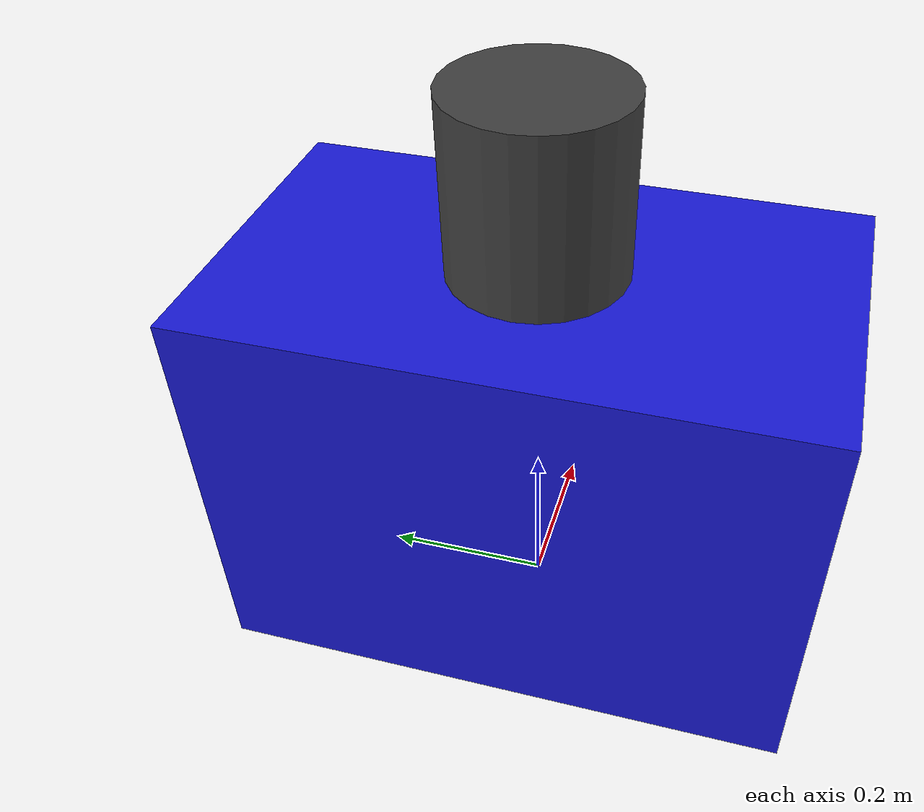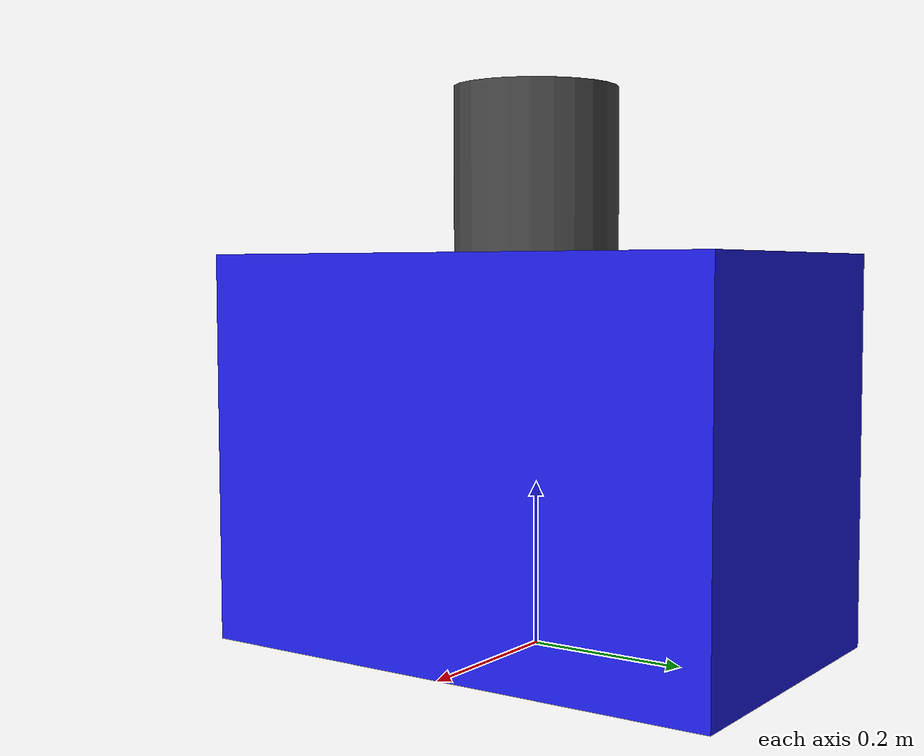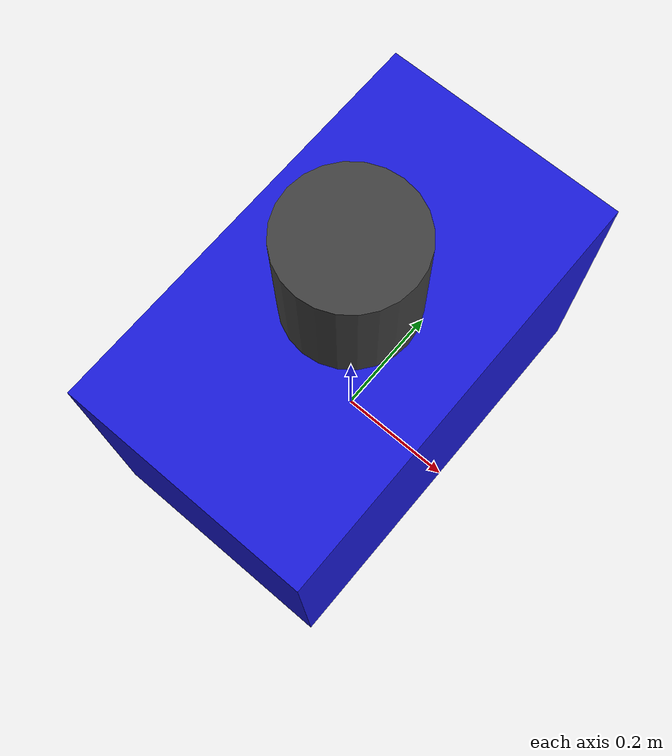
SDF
<?xml version="1.0" ?>
<sdf version="1.6">
  <model name="lander">
    <pose>0 0 0 0 0 0</pose>

    <!-- Radio box, high mass and small inertia so it doesn't fall over easily -->
    <link name="cuboid_link">
      <pose>0 0 0.24 0 0 0</pose> <!-- Position the cuboid on the ground -->
      <visual name="visual">
        <geometry>
          <box>
            <size>0.4 0.68 0.48</size>
          </box>
        </geometry>
        <material>
          <ambient>0.1 0.1 0.85 1</ambient>
          <diffuse>0.1 0.1 0.85 1</diffuse>
        </material>
      </visual>
      <collision name="collision">
        <geometry>
          <box>
            <size>0.4 0.68 0.48</size>
          </box>
        </geometry>
      </collision>
      <inertial>
        <mass>50</mass>
        <inertia>
          <ixx>0.00083</ixx>
          <ixy>0</ixy>
          <ixz>0</ixz>
          <iyy>0.00083</iyy>
          <iyz>0</iyz>
          <izz>0.00083</izz>
        </inertia>
      </inertial>
    </link>

    <!-- Rod link, small mass on purpose -->
    <link name="rod_link">
      <pose>0 0 0.58 0 0 0</pose> <!-- Position the rod on top of the cuboid -->
      <visual name="rod_visual">
        <geometry>
          <cylinder>
            <radius>0.1</radius>
            <length>0.2</length>
          </cylinder>
        </geometry>
        <material>
          <ambient>0.25 0.25 0.25 1</ambient>
          <diffuse>0.25 0.25 0.25 1</diffuse>
        </material>
      </visual>
      <collision name="rod_collision">
        <geometry>
          <cylinder>
            <radius>0.1</radius>
            <length>0.2</length>
          </cylinder>
        </geometry>
      </collision>
      <inertial>
        <mass>0.01</mass>
        <inertia>
          <ixx>0.00083</ixx>
          <ixy>0</ixy>
          <ixz>0</ixz>
          <iyy>0.00083</iyy>
          <iyz>0</iyz>
          <izz>0.00083</izz>
        </inertia>
      </inertial>
    </link>

    <!-- Joint to connect the cuboid and the rod -->
    <joint name="cuboid_rod_joint" type="fixed">
      <parent>cuboid_link</parent>
      <child>rod_link</child>
    </joint>

    <!-- odometry plugin which publishes the position of the radio box -->
    <plugin
      filename="gz-sim-odometry-publisher-system"
      name="gz::sim::systems::OdometryPublisher">
      <dimensions>3</dimensions>
      <odom_publish_frequency>10.0</odom_publish_frequency>
      <odom_topic>lander/odom_ground_truth</odom_topic>
      <odom_frame>map</odom_frame>
      <robot_base_frame>lander/base_link</robot_base_frame>
    </plugin>
  </model>
</sdf>
